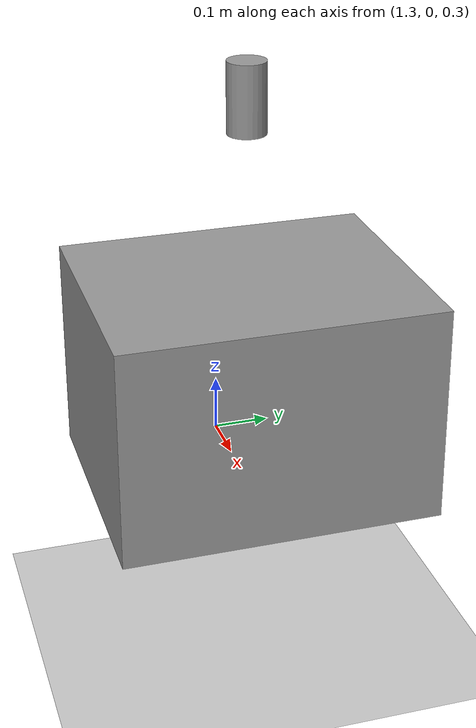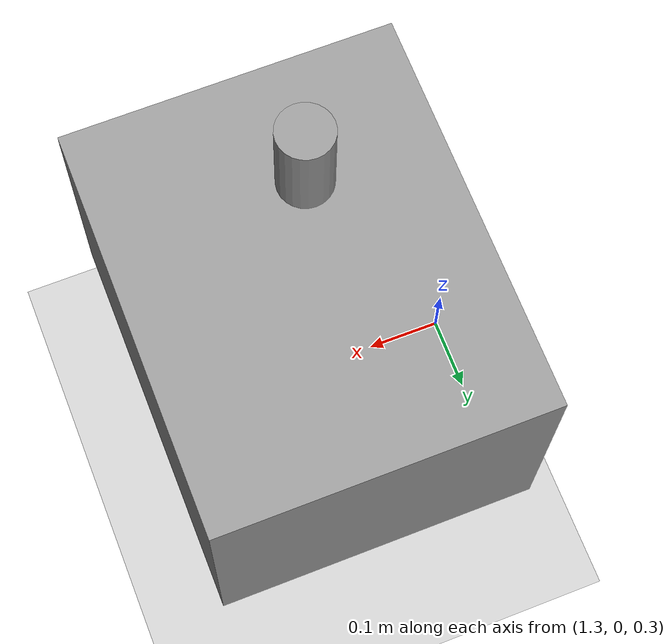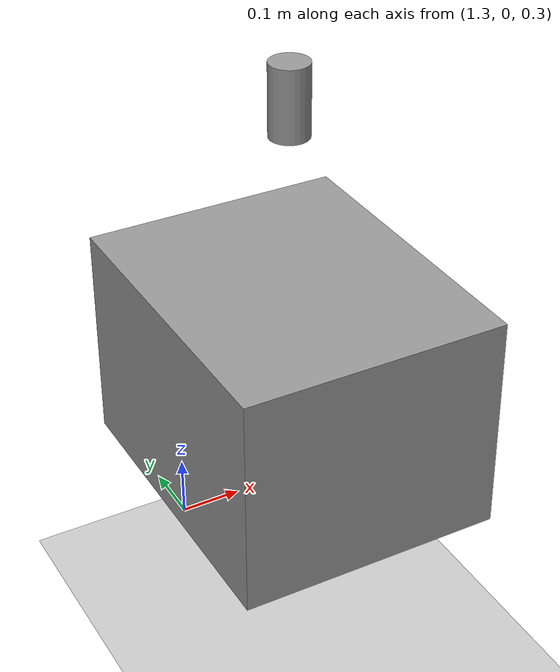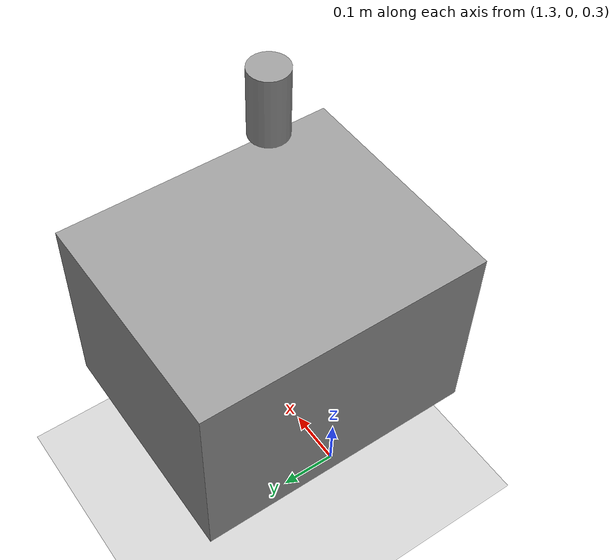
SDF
<sdf version="1.4">
 <world name="default">
  <light name="sun" type="directional">
   <pose>0 0 10 0 -0 0</pose>
   <diffuse>0.8 0.8 0.8 1</diffuse>
   <specular>0.2 0.2 0.2 1</specular>
   <attenuation>
    <range>1000</range>
    <constant>0.9</constant>
    <linear>0.01</linear>
    <quadratic>0.001</quadratic>
   </attenuation>
   <direction>-0.5 0.1 -0.9</direction>
  </light>
  <model name="ground_plane">
   <static>1</static>
   <link name="link">
    <collision name="collision">
     <geometry><plane><normal>0 0 1</normal><size>100 100</size></plane></geometry>
     <surface><friction><ode><mu>100</mu><mu2>50</mu2></ode></friction></surface>
    </collision>
    <visual name="visual">
     <cast_shadows>0</cast_shadows>
     <geometry><plane><normal>0 0 1</normal><size>100 100</size></plane></geometry>
     <material>
      <script><uri>file://media/materials/scripts/gazebo.material</uri><name>Gazebo/Grey</name></script>
     </material>
    </visual>
    <velocity_decay><linear>0</linear><angular>0</angular></velocity_decay>
   </link>
  </model>
  <physics type="ode">
   <gravity>0.000000 0.000000 -9.810000</gravity>
   <ode>
    <solver><type>quick</type><iters>100</iters><precon_iters>0</precon_iters><sor>1.000000</sor></solver>
    <constraints>
     <cfm>0.000000</cfm>
     <erp>0.500000</erp>
     <contact_max_correcting_vel>1000.000000</contact_max_correcting_vel>
     <contact_surface_layer>0.00000</contact_surface_layer>
    </constraints>
   </ode>
  </physics>
  <scene><ambient>0.4 0.4 0.4 1</ambient><background>0.7 0.7 0.7 1</background><shadows>1</shadows></scene>
  <spherical_coordinates>
   <surface_model>EARTH_WGS84</surface_model>
   <latitude_deg>0</latitude_deg>
   <longitude_deg>0</longitude_deg>
   <elevation>0</elevation>
   <heading_deg>0</heading_deg>
  </spherical_coordinates>
  <model name="box_1">
   <pose>1.5 0 0.5 0 -0 0</pose>
   <link name="link">
    <inertial>
     <mass>1</mass>
     <inertia><ixx>1</ixx><ixy>0</ixy><ixz>0</ixz><iyy>1</iyy><iyz>0</iyz><izz>1</izz></inertia>
    </inertial>
    <collision name="collision">
     <geometry><box><size>0.45 0.55 0.38</size></box></geometry>
     <surface><friction><ode><mu>0.01</mu><mu2>0.01</mu2></ode></friction></surface>
    </collision>
    <visual name="visual">
     <geometry><box><size>0.45 0.55 0.38</size></box></geometry>
     <material>
      <script><uri>file://media/materials/scripts/gazebo.material</uri><name>Gazebo/Grey</name></script>
     </material>
    </visual>
    <velocity_decay><linear>0</linear><angular>0</angular></velocity_decay>
   </link>
   <static>0</static>
  </model>
  <model name="coke">
   <pose>1.5 0 1.0 0 -0 0</pose>
   <link name="link">
    <inertial>
     <mass>1</mass>
     <inertia><ixx>1</ixx><ixy>0</ixy><ixz>0</ixz><iyy>1</iyy><iyz>0</iyz><izz>1</izz></inertia>
    </inertial>
    <collision name="collision">
     <geometry><cylinder><radius>0.033</radius><length>0.12</length></cylinder></geometry>
     <surface><friction><ode><mu>0.1</mu><mu2>0.1</mu2></ode></friction></surface>
    </collision>
    <visual name="visual">
     <geometry><cylinder><radius>0.033</radius><length>0.12</length></cylinder></geometry>
     <material>
      <script><uri>file://media/materials/scripts/gazebo.material</uri><name>Gazebo/Grey</name></script>
     </material>
    </visual>
    <velocity_decay><linear>0</linear><angular>0</angular></velocity_decay>
   </link>
   <static>0</static>
  </model>
 </world>
</sdf>
